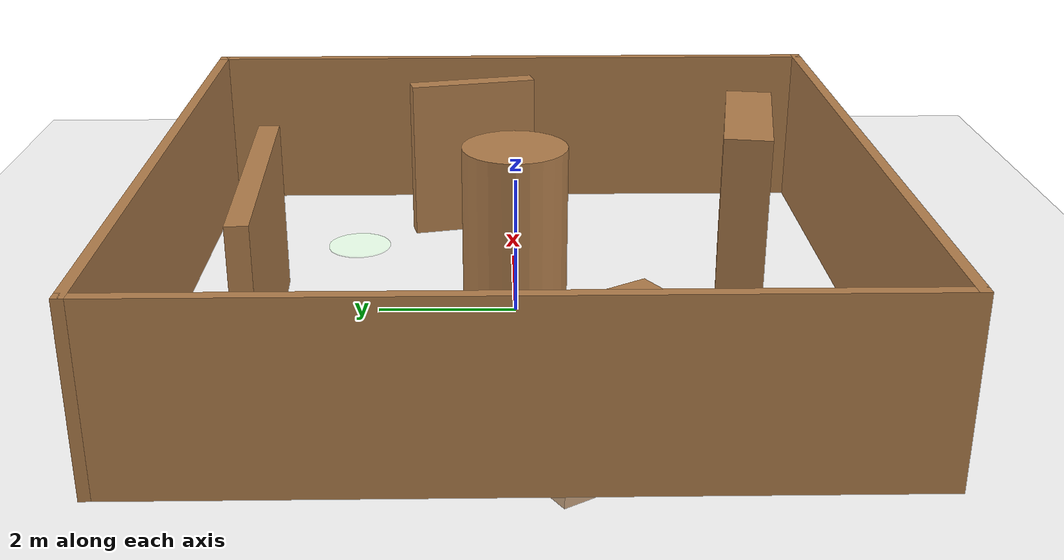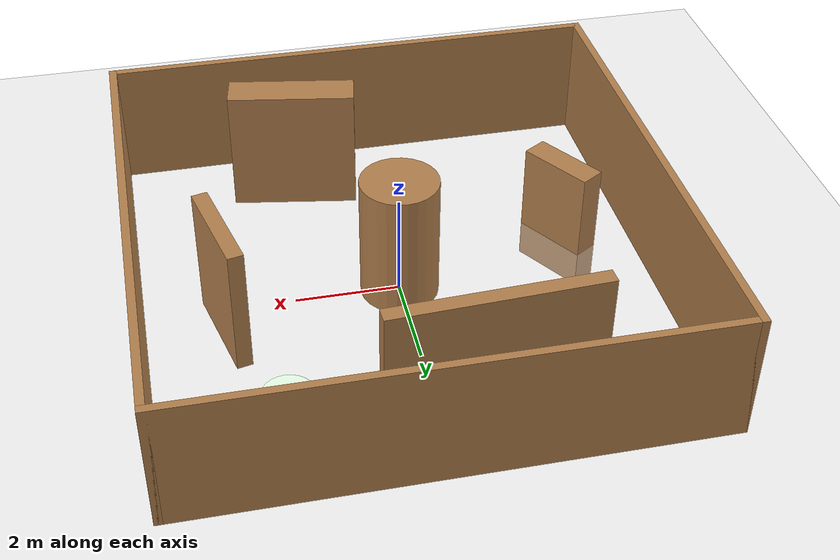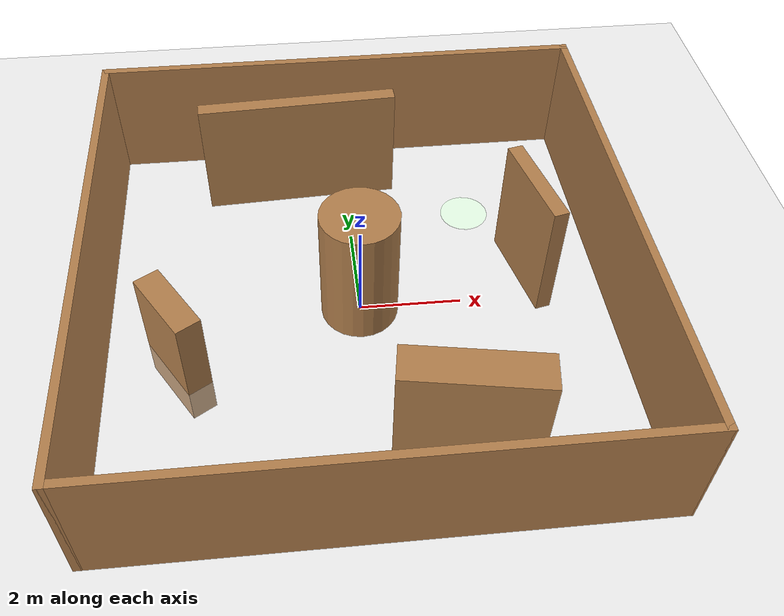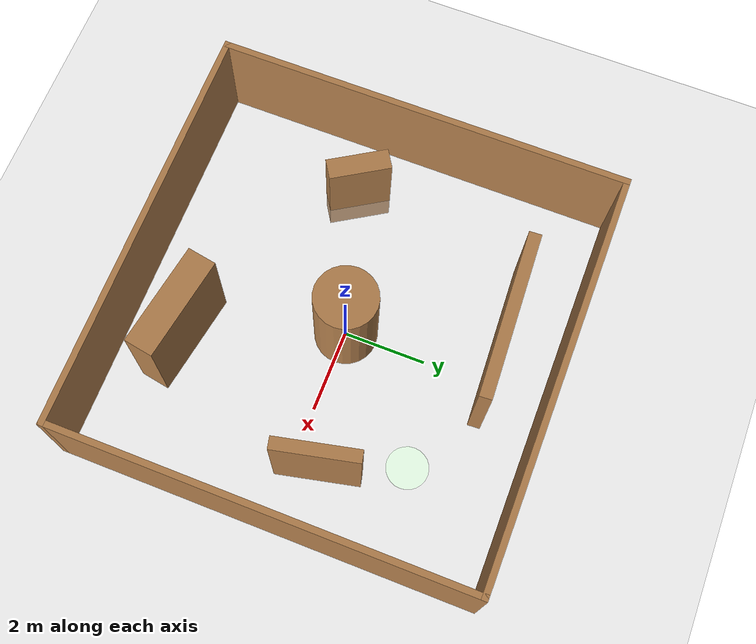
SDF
<sdf version='1.6'>
  <world name='default'>
    <light name='sun' type='directional'>
      <cast_shadows>1</cast_shadows>
      <pose frame=''>0 0 10 0 -0 0</pose>
      <diffuse>0.8 0.8 0.8 1</diffuse>
      <specular>0.2 0.2 0.2 1</specular>
      <attenuation>
        <range>1000</range>
        <constant>0.9</constant>
        <linear>0.01</linear>
        <quadratic>0.001</quadratic>
      </attenuation>
      <direction>-0.5 0.1 -0.9</direction>
    </light>
    <model name='ground_plane'>
      <static>1</static>
      <link name='link'>
        <collision name='collision'>
          <geometry>
            <plane>
              <normal>0 0 1</normal>
              <size>100 100</size>
            </plane>
          </geometry>
          <surface>
            <contact>
              <collide_bitmask>65535</collide_bitmask>
              <ode/>
            </contact>
            <friction>
              <ode>
                <mu>100</mu>
                <mu2>50</mu2>
              </ode>
              <torsional>
                <ode/>
              </torsional>
            </friction>
            <bounce/>
          </surface>
          <max_contacts>10</max_contacts>
        </collision>
        <visual name='visual'>
          <cast_shadows>0</cast_shadows>
          <geometry>
            <plane>
              <normal>0 0 1</normal>
              <size>100 100</size>
            </plane>
          </geometry>
          <material>
            <script>
              <uri>file://media/materials/scripts/gazebo.material</uri>
              <name>Gazebo/Grey</name>
            </script>
          </material>
        </visual>
        <self_collide>0</self_collide>
        <enable_wind>0</enable_wind>
        <kinematic>0</kinematic>
      </link>
    </model>
    <gravity>0 0 -9.8</gravity>
    <magnetic_field>6e-06 2.3e-05 -4.2e-05</magnetic_field>
    <atmosphere type='adiabatic'/>
    <physics name='default_physics' default='0' type='ode'>
      <max_step_size>0.001</max_step_size>
      <real_time_factor>1</real_time_factor>
      <real_time_update_rate>1000</real_time_update_rate>
    </physics>
    <scene>
      <ambient>0.4 0.4 0.4 1</ambient>
      <background>0.7 0.7 0.7 1</background>
      <shadows>1</shadows>
    </scene>
    <wind/>
    <spherical_coordinates>
      <surface_model>EARTH_WGS84</surface_model>
      <latitude_deg>0</latitude_deg>
      <longitude_deg>0</longitude_deg>
      <elevation>0</elevation>
      <heading_deg>0</heading_deg>
    </spherical_coordinates>
    <model name='empty_room_0'>
      <pose frame=''>0 0 0 0 -0 0</pose>
      <link name='Wall_15'>
        <collision name='Wall_15_Collision'>
          <geometry>
            <box>
              <size>10 0.15 2.5</size>
            </box>
          </geometry>
          <pose frame=''>0 0 1.25 0 -0 0</pose>
          <max_contacts>10</max_contacts>
          <surface>
            <contact>
              <ode/>
            </contact>
            <bounce/>
            <friction>
              <torsional>
                <ode/>
              </torsional>
              <ode/>
            </friction>
          </surface>
        </collision>
        <visual name='Wall_15_Visual'>
          <pose frame=''>0 0 1.25 0 -0 0</pose>
          <geometry>
            <box>
              <size>10 0.15 2.5</size>
            </box>
          </geometry>
          <material>
            <script>
              <uri>file://media/materials/scripts/gazebo.material</uri>
              <name>Gazebo/Wood</name>
            </script>
            <ambient>1 1 1 1</ambient>
          </material>
          <meta>
            <layer>0</layer>
          </meta>
        </visual>
        <pose frame=''>-4.925 0 0 0 -0 -1.5708</pose>
        <self_collide>0</self_collide>
        <enable_wind>0</enable_wind>
        <kinematic>0</kinematic>
      </link>
      <link name='Wall_16'>
        <collision name='Wall_16_Collision'>
          <geometry>
            <box>
              <size>10 0.15 2.5</size>
            </box>
          </geometry>
          <pose frame=''>0 0 1.25 0 -0 0</pose>
          <max_contacts>10</max_contacts>
          <surface>
            <contact>
              <ode/>
            </contact>
            <bounce/>
            <friction>
              <torsional>
                <ode/>
              </torsional>
              <ode/>
            </friction>
          </surface>
        </collision>
        <visual name='Wall_16_Visual'>
          <pose frame=''>0 0 1.25 0 -0 0</pose>
          <geometry>
            <box>
              <size>10 0.15 2.5</size>
            </box>
          </geometry>
          <material>
            <script>
              <uri>file://media/materials/scripts/gazebo.material</uri>
              <name>Gazebo/Wood</name>
            </script>
            <ambient>1 1 1 1</ambient>
          </material>
          <meta>
            <layer>0</layer>
          </meta>
        </visual>
        <pose frame=''>0 -4.925 0 0 -0 0</pose>
        <self_collide>0</self_collide>
        <enable_wind>0</enable_wind>
        <kinematic>0</kinematic>
      </link>
      <link name='Wall_18'>
        <collision name='Wall_18_Collision'>
          <geometry>
            <box>
              <size>10 0.15 2.5</size>
            </box>
          </geometry>
          <pose frame=''>0 0 1.25 0 -0 0</pose>
          <max_contacts>10</max_contacts>
          <surface>
            <contact>
              <ode/>
            </contact>
            <bounce/>
            <friction>
              <torsional>
                <ode/>
              </torsional>
              <ode/>
            </friction>
          </surface>
        </collision>
        <visual name='Wall_18_Visual'>
          <pose frame=''>0 0 1.25 0 -0 0</pose>
          <geometry>
            <box>
              <size>10 0.15 2.5</size>
            </box>
          </geometry>
          <material>
            <script>
              <uri>file://media/materials/scripts/gazebo.material</uri>
              <name>Gazebo/Wood</name>
            </script>
            <ambient>1 1 1 1</ambient>
          </material>
          <meta>
            <layer>0</layer>
          </meta>
        </visual>
        <pose frame=''>0 4.925 0 0 -0 0</pose>
        <self_collide>0</self_collide>
        <enable_wind>0</enable_wind>
        <kinematic>0</kinematic>
      </link>
      <link name='Wall_19'>
        <collision name='Wall_19_Collision'>
          <geometry>
            <box>
              <size>10 0.15 2.5</size>
            </box>
          </geometry>
          <pose frame=''>0 0 1.25 0 -0 0</pose>
          <max_contacts>10</max_contacts>
          <surface>
            <contact>
              <ode/>
            </contact>
            <bounce/>
            <friction>
              <torsional>
                <ode/>
              </torsional>
              <ode/>
            </friction>
          </surface>
        </collision>
        <visual name='Wall_19_Visual'>
          <pose frame=''>0 0 1.25 0 -0 0</pose>
          <geometry>
            <box>
              <size>10 0.15 2.5</size>
            </box>
          </geometry>
          <material>
            <script>
              <uri>file://media/materials/scripts/gazebo.material</uri>
              <name>Gazebo/Wood</name>
            </script>
            <ambient>1 1 1 1</ambient>
          </material>
          <meta>
            <layer>0</layer>
          </meta>
        </visual>
        <pose frame=''>4.925 0 0 0 -0 -1.5708</pose>
        <self_collide>0</self_collide>
        <enable_wind>0</enable_wind>
        <kinematic>0</kinematic>
      </link>
      <static>1</static>
    </model>
    <gui fullscreen='0'>
      <camera name='user_camera'>
        <pose frame=''>0 0 19.0409 3.14159 1.57079 3.14159</pose>
        <view_controller>orbit</view_controller>
        <projection_type>perspective</projection_type>
      </camera>
    </gui>
    <model name='spotlight'>
      <link name='link'>
        <inertial>
          <mass>1</mass>
          <inertia>
            <ixx>0.145833</ixx>
            <ixy>0</ixy>
            <ixz>0</ixz>
            <iyy>0.145833</iyy>
            <iyz>0</iyz>
            <izz>0.125</izz>
          </inertia>
          <pose frame=''>0 0 0 0 -0 0</pose>
        </inertial>
        <self_collide>0</self_collide>
        <enable_wind>0</enable_wind>
        <kinematic>0</kinematic>
        <pose frame=''>0 0 0 0 -0 0</pose>
        <gravity>0</gravity>
        <visual name='visual'>
          <geometry>
            <cylinder>
              <radius>0.5</radius>
              <length>0.02</length>
            </cylinder>
          </geometry>
          <material>
            <script>
              <name>Gazebo/Grey</name>
              <uri>file://media/materials/scripts/gazebo.material</uri>
            </script>
            <shader type='pixel'>
              <normal_map>__default__</normal_map>
            </shader>
            <ambient>0.1 1 0.1 1</ambient>
            <diffuse>0.7 1 0.7 1</diffuse>
            <specular>0.01 0.31 0.01 1</specular>
            <emissive>0 0 0 1</emissive>
          </material>
          <pose frame=''>0 0 0 0 -0 0</pose>
          <transparency>0.7</transparency>
          <cast_shadows>1</cast_shadows>
        </visual>
      </link>
      <static>0</static>
      <allow_auto_disable>1</allow_auto_disable>
      <pose frame=''>2.5 2.5 0 3e-06 4e-06 -0</pose>
    </model>
    <model name='obstacle_1'>
      <link name='link'>
        <inertial>
          <mass>1</mass>
          <inertia>
            <ixx>0.145833</ixx>
            <ixy>0</ixy>
            <ixz>0</ixz>
            <iyy>0.145833</iyy>
            <iyz>0</iyz>
            <izz>0.125</izz>
          </inertia>
          <pose frame=''>0 0 0 0 -0 0</pose>
        </inertial>
        <self_collide>0</self_collide>
        <enable_wind>0</enable_wind>
        <kinematic>0</kinematic>
        <pose frame=''>0 0 0 0 -0 0</pose>
        <gravity>1</gravity>
        <visual name='visual'>
          <geometry>
            <cylinder>
              <radius>0.75</radius>
              <length>2.5</length>
            </cylinder>
          </geometry>
          <material>
            <script>
              <name>Gazebo/Wood</name>
              <uri>file://media/materials/scripts/gazebo.material</uri>
            </script>
            <shader type='pixel'>
              <normal_map>__default__</normal_map>
            </shader>
            <ambient>0.3 0.3 0.3 1</ambient>
            <diffuse>0.7 0.7 0.7 1</diffuse>
            <specular>0.01 0.01 0.01 1</specular>
            <emissive>0 0 0 1</emissive>
          </material>
          <pose frame=''>0 0 0 0 -0 0</pose>
          <transparency>0</transparency>
          <cast_shadows>1</cast_shadows>
        </visual>
        <collision name='collision'>
          <laser_retro>0</laser_retro>
          <max_contacts>10</max_contacts>
          <pose frame=''>0 0 0 0 -0 0</pose>
          <geometry>
            <cylinder>
              <radius>0.75</radius>
              <length>2.5</length>
            </cylinder>
          </geometry>
          <surface>
            <friction>
              <ode>
                <mu>1</mu>
                <mu2>1</mu2>
                <fdir1>0 0 0</fdir1>
                <slip1>0</slip1>
                <slip2>0</slip2>
              </ode>
              <torsional>
                <coefficient>1</coefficient>
                <patch_radius>0</patch_radius>
                <surface_radius>0</surface_radius>
                <use_patch_radius>1</use_patch_radius>
                <ode>
                  <slip>0</slip>
                </ode>
              </torsional>
            </friction>
            <bounce>
              <restitution_coefficient>0</restitution_coefficient>
              <threshold>1e+06</threshold>
            </bounce>
            <contact>
              <collide_without_contact>0</collide_without_contact>
              <collide_without_contact_bitmask>1</collide_without_contact_bitmask>
              <collide_bitmask>1</collide_bitmask>
              <ode>
                <soft_cfm>0</soft_cfm>
                <soft_erp>0.2</soft_erp>
                <kp>1e+13</kp>
                <kd>1</kd>
                <max_vel>0.01</max_vel>
                <min_depth>0</min_depth>
              </ode>
              <bullet>
                <split_impulse>1</split_impulse>
                <split_impulse_penetration_threshold>-0.01</split_impulse_penetration_threshold>
                <soft_cfm>0</soft_cfm>
                <soft_erp>0.2</soft_erp>
                <kp>1e+13</kp>
                <kd>1</kd>
              </bullet>
            </contact>
          </surface>
        </collision>
      </link>
      <static>0</static>
      <allow_auto_disable>1</allow_auto_disable>
      <pose frame=''>-0.008031 0.014629 1.24999 0 0 -6e-06</pose>
    </model>
    <model name='obstacle_2'>
      <link name='link'>
        <inertial>
          <mass>1</mass>
          <inertia>
            <ixx>0.166667</ixx>
            <ixy>0</ixy>
            <ixz>0</ixz>
            <iyy>0.166667</iyy>
            <iyz>0</iyz>
            <izz>0.166667</izz>
          </inertia>
          <pose frame=''>0 0 0 0 -0 0</pose>
        </inertial>
        <self_collide>0</self_collide>
        <enable_wind>0</enable_wind>
        <kinematic>0</kinematic>
        <pose frame=''>0 0 0 0 -0 0</pose>
        <gravity>1</gravity>
        <visual name='visual'>
          <geometry>
            <box>
              <size>0.5 1.5 2.5</size>
            </box>
          </geometry>
          <material>
            <script>
              <name>Gazebo/Wood</name>
              <uri>file://media/materials/scripts/gazebo.material</uri>
            </script>
            <shader type='pixel'>
              <normal_map>__default__</normal_map>
            </shader>
            <ambient>0.3 0.3 0.3 1</ambient>
            <diffuse>0.7 0.7 0.7 1</diffuse>
            <specular>0.01 0.01 0.01 1</specular>
            <emissive>0 0 0 1</emissive>
          </material>
          <pose frame=''>0 0 0 0 -0 0</pose>
          <transparency>0</transparency>
          <cast_shadows>1</cast_shadows>
        </visual>
        <collision name='collision'>
          <laser_retro>0</laser_retro>
          <max_contacts>10</max_contacts>
          <pose frame=''>0 0 0 0 -0 0</pose>
          <geometry>
            <box>
              <size>0.5 1.5 2.5</size>
            </box>
          </geometry>
          <surface>
            <friction>
              <ode>
                <mu>1</mu>
                <mu2>1</mu2>
                <fdir1>0 0 0</fdir1>
                <slip1>0</slip1>
                <slip2>0</slip2>
              </ode>
              <torsional>
                <coefficient>1</coefficient>
                <patch_radius>0</patch_radius>
                <surface_radius>0</surface_radius>
                <use_patch_radius>1</use_patch_radius>
                <ode>
                  <slip>0</slip>
                </ode>
              </torsional>
            </friction>
            <bounce>
              <restitution_coefficient>0</restitution_coefficient>
              <threshold>1e+06</threshold>
            </bounce>
            <contact>
              <collide_without_contact>0</collide_without_contact>
              <collide_without_contact_bitmask>1</collide_without_contact_bitmask>
              <collide_bitmask>1</collide_bitmask>
              <ode>
                <soft_cfm>0</soft_cfm>
                <soft_erp>0.2</soft_erp>
                <kp>1e+13</kp>
                <kd>1</kd>
                <max_vel>0.01</max_vel>
                <min_depth>0</min_depth>
              </ode>
              <bullet>
                <split_impulse>1</split_impulse>
                <split_impulse_penetration_threshold>-0.01</split_impulse_penetration_threshold>
                <soft_cfm>0</soft_cfm>
                <soft_erp>0.2</soft_erp>
                <kp>1e+13</kp>
                <kd>1</kd>
              </bullet>
            </contact>
          </surface>
        </collision>
      </link>
      <static>0</static>
      <allow_auto_disable>1</allow_auto_disable>
      <pose frame=''>-3.48535 -1.01972 0.5 0 -0 0.56</pose>
    </model>
    <model name='obstacle_3'>
      <link name='link'>
        <inertial>
          <mass>1</mass>
          <inertia>
            <ixx>0.166667</ixx>
            <ixy>0</ixy>
            <ixz>0</ixz>
            <iyy>0.166667</iyy>
            <iyz>0</iyz>
            <izz>0.166667</izz>
          </inertia>
          <pose frame=''>0 0 0 0 -0 0</pose>
        </inertial>
        <self_collide>0</self_collide>
        <enable_wind>0</enable_wind>
        <kinematic>0</kinematic>
        <pose frame=''>0 0 0 0 -0 0</pose>
        <gravity>1</gravity>
        <visual name='visual'>
          <geometry>
            <box>
              <size>0.3 2 2.5</size>
            </box>
          </geometry>
          <material>
            <script>
              <name>Gazebo/Wood</name>
              <uri>file://media/materials/scripts/gazebo.material</uri>
            </script>
            <shader type='pixel'>
              <normal_map>__default__</normal_map>
            </shader>
            <ambient>0.3 0.3 0.3 1</ambient>
            <diffuse>0.7 0.7 0.7 1</diffuse>
            <specular>0.01 0.01 0.01 1</specular>
            <emissive>0 0 0 1</emissive>
          </material>
          <pose frame=''>0 0 0 0 -0 0</pose>
          <transparency>0</transparency>
          <cast_shadows>1</cast_shadows>
        </visual>
        <collision name='collision'>
          <laser_retro>0</laser_retro>
          <max_contacts>10</max_contacts>
          <pose frame=''>0 0 0 0 -0 0</pose>
          <geometry>
            <box>
              <size>0.3 2 2.5</size>
            </box>
          </geometry>
          <surface>
            <friction>
              <ode>
                <mu>1</mu>
                <mu2>1</mu2>
                <fdir1>0 0 0</fdir1>
                <slip1>0</slip1>
                <slip2>0</slip2>
              </ode>
              <torsional>
                <coefficient>1</coefficient>
                <patch_radius>0</patch_radius>
                <surface_radius>0</surface_radius>
                <use_patch_radius>1</use_patch_radius>
                <ode>
                  <slip>0</slip>
                </ode>
              </torsional>
            </friction>
            <bounce>
              <restitution_coefficient>0</restitution_coefficient>
              <threshold>1e+06</threshold>
            </bounce>
            <contact>
              <collide_without_contact>0</collide_without_contact>
              <collide_without_contact_bitmask>1</collide_without_contact_bitmask>
              <collide_bitmask>1</collide_bitmask>
              <ode>
                <soft_cfm>0</soft_cfm>
                <soft_erp>0.2</soft_erp>
                <kp>1e+13</kp>
                <kd>1</kd>
                <max_vel>0.01</max_vel>
                <min_depth>0</min_depth>
              </ode>
              <bullet>
                <split_impulse>1</split_impulse>
                <split_impulse_penetration_threshold>-0.01</split_impulse_penetration_threshold>
                <soft_cfm>0</soft_cfm>
                <soft_erp>0.2</soft_erp>
                <kp>1e+13</kp>
                <kd>1</kd>
              </bullet>
            </contact>
          </surface>
        </collision>
      </link>
      <static>0</static>
      <allow_auto_disable>1</allow_auto_disable>
      <pose frame=''>3.37112 0.654239 1.25 1e-06 0 0.22</pose>
    </model>
    <model name='obstacle_4'>
      <link name='link'>
        <inertial>
          <mass>1</mass>
          <inertia>
            <ixx>0.166667</ixx>
            <ixy>0</ixy>
            <ixz>0</ixz>
            <iyy>0.166667</iyy>
            <iyz>0</iyz>
            <izz>0.166667</izz>
          </inertia>
          <pose frame=''>0 0 0 0 -0 0</pose>
        </inertial>
        <self_collide>0</self_collide>
        <enable_wind>0</enable_wind>
        <kinematic>0</kinematic>
        <pose frame=''>0 0 0 0 -0 0</pose>
        <gravity>1</gravity>
        <visual name='visual'>
          <geometry>
            <box>
              <size>0.7 2.5 2.5</size>
            </box>
          </geometry>
          <material>
            <script>
              <name>Gazebo/Wood</name>
              <uri>file://media/materials/scripts/gazebo.material</uri>
            </script>
            <shader type='pixel'>
              <normal_map>__default__</normal_map>
            </shader>
            <ambient>0.3 0.3 0.3 1</ambient>
            <diffuse>0.7 0.7 0.7 1</diffuse>
            <specular>0.01 0.01 0.01 1</specular>
            <emissive>0 0 0 1</emissive>
          </material>
          <pose frame=''>0 0 0 0 -0 0</pose>
          <transparency>0</transparency>
          <cast_shadows>1</cast_shadows>
        </visual>
        <collision name='collision'>
          <laser_retro>0</laser_retro>
          <max_contacts>10</max_contacts>
          <pose frame=''>0 0 0 0 -0 0</pose>
          <geometry>
            <box>
              <size>0.7 2.5 2.5</size>
            </box>
          </geometry>
          <surface>
            <friction>
              <ode>
                <mu>1</mu>
                <mu2>1</mu2>
                <fdir1>0 0 0</fdir1>
                <slip1>0</slip1>
                <slip2>0</slip2>
              </ode>
              <torsional>
                <coefficient>1</coefficient>
                <patch_radius>0</patch_radius>
                <surface_radius>0</surface_radius>
                <use_patch_radius>1</use_patch_radius>
                <ode>
                  <slip>0</slip>
                </ode>
              </torsional>
            </friction>
            <bounce>
              <restitution_coefficient>0</restitution_coefficient>
              <threshold>1e+06</threshold>
            </bounce>
            <contact>
              <collide_without_contact>0</collide_without_contact>
              <collide_without_contact_bitmask>1</collide_without_contact_bitmask>
              <collide_bitmask>1</collide_bitmask>
              <ode>
                <soft_cfm>0</soft_cfm>
                <soft_erp>0.2</soft_erp>
                <kp>1e+13</kp>
                <kd>1</kd>
                <max_vel>0.01</max_vel>
                <min_depth>0</min_depth>
              </ode>
              <bullet>
                <split_impulse>1</split_impulse>
                <split_impulse_penetration_threshold>-0.01</split_impulse_penetration_threshold>
                <soft_cfm>0</soft_cfm>
                <soft_erp>0.2</soft_erp>
                <kp>1e+13</kp>
                <kd>1</kd>
              </bullet>
            </contact>
          </surface>
        </collision>
      </link>
      <static>0</static>
      <allow_auto_disable>1</allow_auto_disable>
      <pose frame=''>1.47172 -3.51147 1.25 1e-06 0 1.40</pose>
    </model>
    <model name='obstacle_5'>
      <link name='link'>
        <inertial>
          <mass>1</mass>
          <inertia>
            <ixx>0.166667</ixx>
            <ixy>0</ixy>
            <ixz>0</ixz>
            <iyy>0.166667</iyy>
            <iyz>0</iyz>
            <izz>0.166667</izz>
          </inertia>
          <pose frame=''>0 0 0 0 -0 0</pose>
        </inertial>
        <self_collide>0</self_collide>
        <enable_wind>0</enable_wind>
        <kinematic>0</kinematic>
        <pose frame=''>0 0 0 0 -0 0</pose>
        <gravity>1</gravity>
        <visual name='visual'>
          <geometry>
            <box>
              <size>0.3 4 2.5</size>
            </box>
          </geometry>
          <material>
            <script>
              <name>Gazebo/Wood</name>
              <uri>file://media/materials/scripts/gazebo.material</uri>
            </script>
            <shader type='pixel'>
              <normal_map>__default__</normal_map>
            </shader>
            <ambient>0.3 0.3 0.3 1</ambient>
            <diffuse>0.7 0.7 0.7 1</diffuse>
            <specular>0.01 0.01 0.01 1</specular>
            <emissive>0 0 0 1</emissive>
          </material>
          <pose frame=''>0 0 0 0 -0 0</pose>
          <transparency>0</transparency>
          <cast_shadows>1</cast_shadows>
        </visual>
        <collision name='collision'>
          <laser_retro>0</laser_retro>
          <max_contacts>10</max_contacts>
          <pose frame=''>0 0 0 0 -0 0</pose>
          <geometry>
            <box>
              <size>0.3 4 2.5</size>
            </box>
          </geometry>
          <surface>
            <friction>
              <ode>
                <mu>1</mu>
                <mu2>1</mu2>
                <fdir1>0 0 0</fdir1>
                <slip1>0</slip1>
                <slip2>0</slip2>
              </ode>
              <torsional>
                <coefficient>1</coefficient>
                <patch_radius>0</patch_radius>
                <surface_radius>0</surface_radius>
                <use_patch_radius>1</use_patch_radius>
                <ode>
                  <slip>0</slip>
                </ode>
              </torsional>
            </friction>
            <bounce>
              <restitution_coefficient>0</restitution_coefficient>
              <threshold>1e+06</threshold>
            </bounce>
            <contact>
              <collide_without_contact>0</collide_without_contact>
              <collide_without_contact_bitmask>1</collide_without_contact_bitmask>
              <collide_bitmask>1</collide_bitmask>
              <ode>
                <soft_cfm>0</soft_cfm>
                <soft_erp>0.2</soft_erp>
                <kp>1e+13</kp>
                <kd>1</kd>
                <max_vel>0.01</max_vel>
                <min_depth>0</min_depth>
              </ode>
              <bullet>
                <split_impulse>1</split_impulse>
                <split_impulse_penetration_threshold>-0.01</split_impulse_penetration_threshold>
                <soft_cfm>0</soft_cfm>
                <soft_erp>0.2</soft_erp>
                <kp>1e+13</kp>
                <kd>1</kd>
              </bullet>
            </contact>
          </surface>
        </collision>
      </link>
      <static>0</static>
      <allow_auto_disable>1</allow_auto_disable>
      <pose frame=''>-0.960179 3.49013 1.25 1e-06 0 1.62</pose>
    </model>
  </world>
</sdf>
